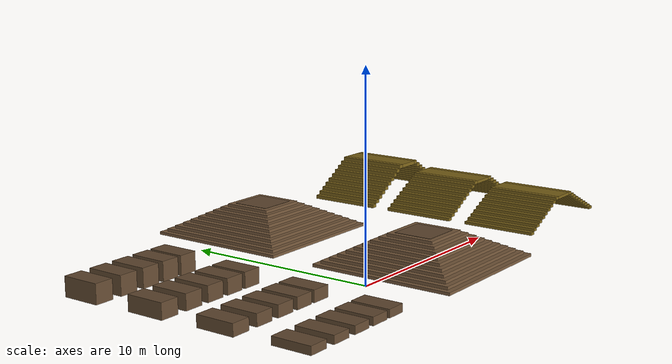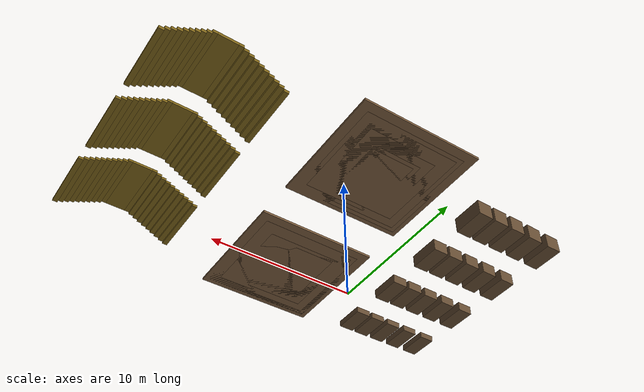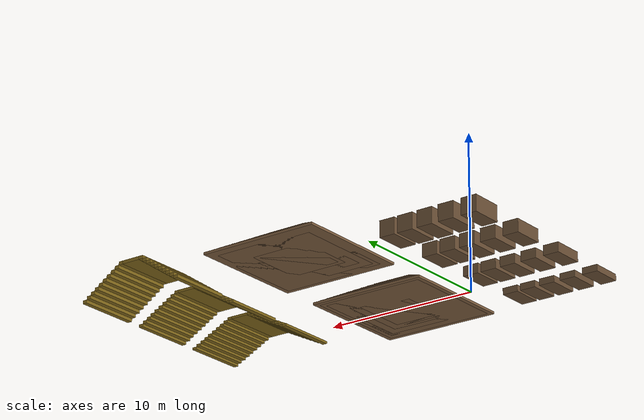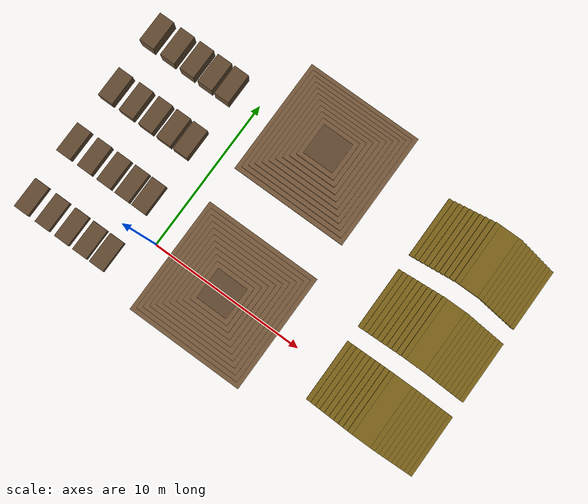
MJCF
<mujoco>
<worldbody>

  <!-- ===== Pyramid 15cm ===== -->
  <body name="pyramid_15cm" pos="0 0 0">
    <geom type="box" pos="4.80 0 0.075" size="3.80 3.80 0.075" rgba="0.48 0.36 0.24 1" contype="1" conaffinity="1" friction="0.8 0.8"/>
    <geom type="box" pos="4.80 0 0.150" size="3.52 3.52 0.150" rgba="0.48 0.36 0.24 1" contype="1" conaffinity="1" friction="0.8 0.8"/>
    <geom type="box" pos="4.80 0 0.225" size="3.24 3.24 0.225" rgba="0.48 0.36 0.24 1" contype="1" conaffinity="1" friction="0.8 0.8"/>
    <geom type="box" pos="4.80 0 0.300" size="2.96 2.96 0.300" rgba="0.48 0.36 0.24 1" contype="1" conaffinity="1" friction="0.8 0.8"/>
    <geom type="box" pos="4.80 0 0.375" size="2.68 2.68 0.375" rgba="0.48 0.36 0.24 1" contype="1" conaffinity="1" friction="0.8 0.8"/>
    <geom type="box" pos="4.80 0 0.450" size="2.40 2.40 0.450" rgba="0.48 0.36 0.24 1" contype="1" conaffinity="1" friction="0.8 0.8"/>
    <geom type="box" pos="4.80 0 0.525" size="2.12 2.12 0.525" rgba="0.48 0.36 0.24 1" contype="1" conaffinity="1" friction="0.8 0.8"/>
    <geom type="box" pos="4.80 0 0.600" size="1.84 1.84 0.600" rgba="0.48 0.36 0.24 1" contype="1" conaffinity="1" friction="0.8 0.8"/>
    <geom type="box" pos="4.80 0 0.675" size="1.56 1.56 0.675" rgba="0.48 0.36 0.24 1" contype="1" conaffinity="1" friction="0.8 0.8"/>
    <geom type="box" pos="4.80 0 0.750" size="1.28 1.28 0.750" rgba="0.48 0.36 0.24 1" contype="1" conaffinity="1" friction="0.8 0.8"/>
    <geom type="box" pos="4.80 0 1.51" size="1.00 1.00 0.01" rgba="0.40 0.30 0.20 1" contype="1" conaffinity="1" friction="0.8 0.8"/>
  </body>

  <body name="pyramid_20cm" pos="0 10 0">
    <geom type="box" pos="4.80 0 0.075" size="3.80 3.80 0.075" rgba="0.48 0.36 0.24 1" contype="1" conaffinity="1" friction="0.8 0.8"/>
    <geom type="box" pos="4.80 0 0.150" size="3.52 3.52 0.150" rgba="0.48 0.36 0.24 1" contype="1" conaffinity="1" friction="0.8 0.8"/>
    <geom type="box" pos="4.80 0 0.225" size="3.24 3.24 0.225" rgba="0.48 0.36 0.24 1" contype="1" conaffinity="1" friction="0.8 0.8"/>
    <geom type="box" pos="4.80 0 0.300" size="2.96 2.96 0.300" rgba="0.48 0.36 0.24 1" contype="1" conaffinity="1" friction="0.8 0.8"/>
    <geom type="box" pos="4.80 0 0.375" size="2.68 2.68 0.375" rgba="0.48 0.36 0.24 1" contype="1" conaffinity="1" friction="0.8 0.8"/>
    <geom type="box" pos="4.80 0 0.450" size="2.40 2.40 0.450" rgba="0.48 0.36 0.24 1" contype="1" conaffinity="1" friction="0.8 0.8"/>
    <geom type="box" pos="4.80 0 0.525" size="2.12 2.12 0.525" rgba="0.48 0.36 0.24 1" contype="1" conaffinity="1" friction="0.8 0.8"/>
    <geom type="box" pos="4.80 0 0.600" size="1.84 1.84 0.600" rgba="0.48 0.36 0.24 1" contype="1" conaffinity="1" friction="0.8 0.8"/>
    <geom type="box" pos="4.80 0 0.675" size="1.56 1.56 0.675" rgba="0.48 0.36 0.24 1" contype="1" conaffinity="1" friction="0.8 0.8"/>
    <geom type="box" pos="4.80 0 0.750" size="1.28 1.28 0.750" rgba="0.48 0.36 0.24 1" contype="1" conaffinity="1" friction="0.8 0.8"/>
    <geom type="box" pos="4.80 0 1.51" size="1.00 1.00 0.01" rgba="0.40 0.30 0.20 1" contype="1" conaffinity="1" friction="0.8 0.8"/>
  </body>

  <!-- 15cm -->
  <body name="stairs_15cm" pos="10 0 0">
    <geom pos="2.15 0 0.075" type="box" size="0.15 2 0.075" rgba="0.50 0.40 0.10 1" quat="1 0 0 0"/>
    <geom pos="2.45 0 0.225" type="box" size="0.15 2 0.075" rgba="0.50 0.40 0.10 1" quat="1 0 0 0"/>
    <geom pos="2.75 0 0.375" type="box" size="0.15 2 0.075" rgba="0.50 0.40 0.10 1" quat="1 0 0 0"/>
    <geom pos="3.05 0 0.525" type="box" size="0.15 2 0.075" rgba="0.50 0.40 0.10 1" quat="1 0 0 0"/>
    <geom pos="3.35 0 0.675" type="box" size="0.15 2 0.075" rgba="0.50 0.40 0.10 1" quat="1 0 0 0"/>
    <geom pos="3.65 0 0.825" type="box" size="0.15 2 0.075" rgba="0.50 0.40 0.10 1" quat="1 0 0 0"/>
    <geom pos="3.95 0 0.975" type="box" size="0.15 2 0.075" rgba="0.50 0.40 0.10 1" quat="1 0 0 0"/>
    <geom pos="4.25 0 1.125" type="box" size="0.15 2 0.075" rgba="0.50 0.40 0.10 1" quat="1 0 0 0"/>
    <geom pos="4.55 0 1.275" type="box" size="0.15 2 0.075" rgba="0.50 0.40 0.10 1" quat="1 0 0 0"/>
    <geom pos="4.85 0 1.425" type="box" size="0.15 2 0.075" rgba="0.50 0.40 0.10 1" quat="1 0 0 0"/>

    <geom pos="5.6 0 1.425" type="box" size="0.6 2 0.075" rgba="0.50 0.40 0.10 1" quat="1 0 0 0"/>

    <geom pos="6.35 0 1.425" type="box" size="0.15 2 0.075" rgba="0.50 0.40 0.10 1" quat="1 0 0 0"/>
    <geom pos="6.65 0 1.275" type="box" size="0.15 2 0.075" rgba="0.50 0.40 0.10 1" quat="1 0 0 0"/>
    <geom pos="6.95 0 1.125" type="box" size="0.15 2 0.075" rgba="0.50 0.40 0.10 1" quat="1 0 0 0"/>
    <geom pos="7.25 0 0.975" type="box" size="0.15 2 0.075" rgba="0.50 0.40 0.10 1" quat="1 0 0 0"/>
    <geom pos="7.55 0 0.825" type="box" size="0.15 2 0.075" rgba="0.50 0.40 0.10 1" quat="1 0 0 0"/>
    <geom pos="7.85 0 0.675" type="box" size="0.15 2 0.075" rgba="0.50 0.40 0.10 1" quat="1 0 0 0"/>
    <geom pos="8.15 0 0.525" type="box" size="0.15 2 0.075" rgba="0.50 0.40 0.10 1" quat="1 0 0 0"/>
    <geom pos="8.45 0 0.375" type="box" size="0.15 2 0.075" rgba="0.50 0.40 0.10 1" quat="1 0 0 0"/>
    <geom pos="8.75 0 0.225" type="box" size="0.15 2 0.075" rgba="0.50 0.40 0.10 1" quat="1 0 0 0"/>
    <geom pos="9.05 0 0.075" type="box" size="0.15 2 0.075" rgba="0.50 0.40 0.10 1" quat="1 0 0 0"/>
  </body>

  <!-- 17cm  -->
  <body name="stairs_17cm" pos="10 5 0">
    <geom pos="2.15 0 0.085" type="box" size="0.15 2 0.085" rgba="0.50 0.40 0.10 1" quat="1 0 0 0"/>
    <geom pos="2.45 0 0.255" type="box" size="0.15 2 0.085" rgba="0.50 0.40 0.10 1" quat="1 0 0 0"/>
    <geom pos="2.75 0 0.425" type="box" size="0.15 2 0.085" rgba="0.50 0.40 0.10 1" quat="1 0 0 0"/>
    <geom pos="3.05 0 0.595" type="box" size="0.15 2 0.085" rgba="0.50 0.40 0.10 1" quat="1 0 0 0"/>
    <geom pos="3.35 0 0.765" type="box" size="0.15 2 0.085" rgba="0.50 0.40 0.10 1" quat="1 0 0 0"/>
    <geom pos="3.65 0 0.935" type="box" size="0.15 2 0.085" rgba="0.50 0.40 0.10 1" quat="1 0 0 0"/>
    <geom pos="3.95 0 1.105" type="box" size="0.15 2 0.085" rgba="0.50 0.40 0.10 1" quat="1 0 0 0"/>
    <geom pos="4.25 0 1.275" type="box" size="0.15 2 0.085" rgba="0.50 0.40 0.10 1" quat="1 0 0 0"/>
    <geom pos="4.55 0 1.445" type="box" size="0.15 2 0.085" rgba="0.50 0.40 0.10 1" quat="1 0 0 0"/>
    <geom pos="4.85 0 1.615" type="box" size="0.15 2 0.085" rgba="0.50 0.40 0.10 1" quat="1 0 0 0"/>

    <geom pos="5.6 0 1.615" type="box" size="0.6 2 0.085" rgba="0.50 0.40 0.10 1" quat="1 0 0 0"/>

    <geom pos="6.35 0 1.615" type="box" size="0.15 2 0.085" rgba="0.50 0.40 0.10 1" quat="1 0 0 0"/>
    <geom pos="6.65 0 1.445" type="box" size="0.15 2 0.085" rgba="0.50 0.40 0.10 1" quat="1 0 0 0"/>
    <geom pos="6.95 0 1.275" type="box" size="0.15 2 0.085" rgba="0.50 0.40 0.10 1" quat="1 0 0 0"/>
    <geom pos="7.25 0 1.105" type="box" size="0.15 2 0.085" rgba="0.50 0.40 0.10 1" quat="1 0 0 0"/>
    <geom pos="7.55 0 0.935" type="box" size="0.15 2 0.085" rgba="0.50 0.40 0.10 1" quat="1 0 0 0"/>
    <geom pos="7.85 0 0.765" type="box" size="0.15 2 0.085" rgba="0.50 0.40 0.10 1" quat="1 0 0 0"/>
    <geom pos="8.15 0 0.595" type="box" size="0.15 2 0.085" rgba="0.50 0.40 0.10 1" quat="1 0 0 0"/>
    <geom pos="8.45 0 0.425" type="box" size="0.15 2 0.085" rgba="0.50 0.40 0.10 1" quat="1 0 0 0"/>
    <geom pos="8.75 0 0.255" type="box" size="0.15 2 0.085" rgba="0.50 0.40 0.10 1" quat="1 0 0 0"/>
    <geom pos="9.05 0 0.085" type="box" size="0.15 2 0.085" rgba="0.50 0.40 0.10 1" quat="1 0 0 0"/>

  </body>

  <!-- 20cm -->
  <body name="stairs_20cm" pos="10 10 0">
    <geom pos="2.15 0 0.1" type="box" size="0.15 2 0.1" rgba="0.50 0.40 0.10 1" quat="1 0 0 0"/>
    <geom pos="2.45 0 0.3" type="box" size="0.15 2 0.1" rgba="0.50 0.40 0.10 1" quat="1 0 0 0"/>
    <geom pos="2.75 0 0.5" type="box" size="0.15 2 0.1" rgba="0.50 0.40 0.10 1" quat="1 0 0 0"/>
    <geom pos="3.05 0 0.7" type="box" size="0.15 2 0.1" rgba="0.50 0.40 0.10 1" quat="1 0 0 0"/>
    <geom pos="3.35 0 0.9" type="box" size="0.15 2 0.1" rgba="0.50 0.40 0.10 1" quat="1 0 0 0"/>
    <geom pos="3.65 0 1.1" type="box" size="0.15 2 0.1" rgba="0.50 0.40 0.10 1" quat="1 0 0 0"/>
    <geom pos="3.95 0 1.3" type="box" size="0.15 2 0.1" rgba="0.50 0.40 0.10 1" quat="1 0 0 0"/>
    <geom pos="4.25 0 1.5" type="box" size="0.15 2 0.1" rgba="0.50 0.40 0.10 1" quat="1 0 0 0"/>
    <geom pos="4.55 0 1.7" type="box" size="0.15 2 0.1" rgba="0.50 0.40 0.10 1" quat="1 0 0 0"/>
    <geom pos="4.85 0 1.9" type="box" size="0.15 2 0.1" rgba="0.50 0.40 0.10 1" quat="1 0 0 0"/>

    <geom pos="5.6 0 1.9" type="box" size="0.6 2 0.1" rgba="0.50 0.40 0.10 1" quat="1 0 0 0"/>

    <geom pos="6.35 0 1.9" type="box" size="0.15 2 0.1" rgba="0.50 0.40 0.10 1" quat="1 0 0 0"/>
    <geom pos="6.65 0 1.7" type="box" size="0.15 2 0.1" rgba="0.50 0.40 0.10 1" quat="1 0 0 0"/>
    <geom pos="6.95 0 1.5" type="box" size="0.15 2 0.1" rgba="0.50 0.40 0.10 1" quat="1 0 0 0"/>
    <geom pos="7.25 0 1.3" type="box" size="0.15 2 0.1" rgba="0.50 0.40 0.10 1" quat="1 0 0 0"/>
    <geom pos="7.55 0 1.1" type="box" size="0.15 2 0.1" rgba="0.50 0.40 0.10 1" quat="1 0 0 0"/>
    <geom pos="7.85 0 0.9" type="box" size="0.15 2 0.1" rgba="0.50 0.40 0.10 1" quat="1 0 0 0"/>
    <geom pos="8.15 0 0.7" type="box" size="0.15 2 0.1" rgba="0.50 0.40 0.10 1" quat="1 0 0 0"/>
    <geom pos="8.45 0 0.5" type="box" size="0.15 2 0.1" rgba="0.50 0.40 0.10 1" quat="1 0 0 0"/>
    <geom pos="8.75 0 0.3" type="box" size="0.15 2 0.1" rgba="0.50 0.40 0.10 1" quat="1 0 0 0"/>
    <geom pos="9.05 0 0.1" type="box" size="0.15 2 0.1" rgba="0.50 0.40 0.10 1" quat="1 0 0 0"/>
  </body>

  <body name="box20" pos="-2  -2  0">
    <geom pos="0 0 0" type="box" size="0.5 1 0.2" rgba="0.4 0.3 0.2 1"/>
    <geom pos="-1.2 0 0" type="box" size="0.5 1 0.2" rgba="0.4 0.3 0.2 1"/>
    <geom pos="-2.5 0 0" type="box" size="0.5 1 0.2" rgba="0.4 0.3 0.2 1"/>
    <geom pos="-3.9 0 0" type="box" size="0.5 1 0.2" rgba="0.4 0.3 0.2 1"/>
    <geom pos="-5.4 0 0" type="box" size="0.5 1 0.2" rgba="0.4 0.3 0.2 1"/>
  </body>

  <body name="box30" pos="-2  2  0">
    <geom pos="0 0 0" type="box" size="0.5 1 0.3" rgba="0.4 0.3 0.2 1"/>
    <geom pos="-1.2 0 0" type="box" size="0.5 1 0.3" rgba="0.4 0.3 0.2 1"/>
    <geom pos="-2.5 0 0" type="box" size="0.5 1 0.3" rgba="0.4 0.3 0.2 1"/>
    <geom pos="-3.9 0 0" type="box" size="0.5 1 0.3" rgba="0.4 0.3 0.2 1"/>
    <geom pos="-5.4 0 0" type="box" size="0.5 1 0.3" rgba="0.4 0.3 0.2 1"/>
  </body>

  <body name="box40" pos="-2  6  0">
    <geom pos="0 0 0" type="box" size="0.5 1 0.4" rgba="0.4 0.3 0.2 1"/>
    <geom pos="-1.2 0 0" type="box" size="0.5 1 0.4" rgba="0.4 0.3 0.2 1"/>
    <geom pos="-2.5 0 0" type="box" size="0.5 1 0.4" rgba="0.4 0.3 0.2 1"/>
    <geom pos="-3.9 0 0" type="box" size="0.5 1 0.4" rgba="0.4 0.3 0.2 1"/>
    <geom pos="-5.4 0 0" type="box" size="0.5 1 0.4" rgba="0.4 0.3 0.2 1"/>
  </body>

  <body name="box50" pos="-2  10  0">
    <geom pos="0 0 0" type="box" size="0.5 1 0.5" rgba="0.4 0.3 0.2 1"/>
    <geom pos="-1.2 0 0" type="box" size="0.5 1 0.5" rgba="0.4 0.3 0.2 1"/>
    <geom pos="-2.5 0 0" type="box" size="0.5 1 0.5" rgba="0.4 0.3 0.2 1"/>
    <geom pos="-3.9 0 0" type="box" size="0.5 1 0.5" rgba="0.4 0.3 0.2 1"/>
    <geom pos="-5.4 0 0" type="box" size="0.5 1 0.5" rgba="0.4 0.3 0.2 1"/>
  </body>

</worldbody>
</mujoco>
